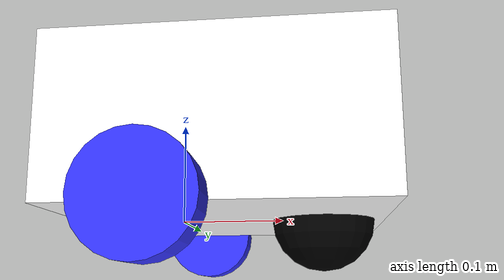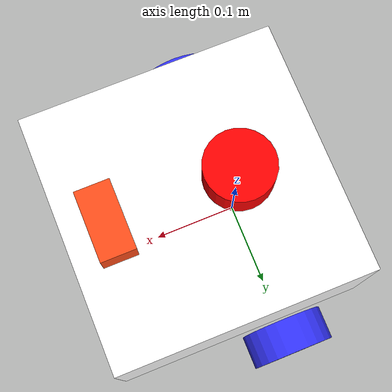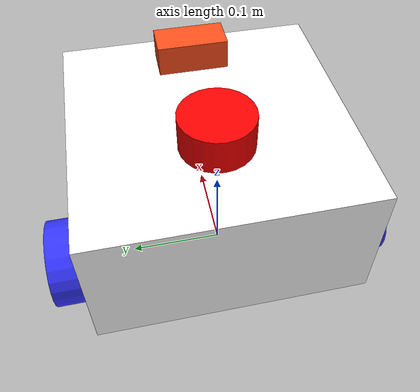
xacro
<?xml version="1.0"?>
<robot xmlns:xacro="http://www.ros.org/wiki/xacro"  name="robot">

    <xacro:arg name="use_ros2_control" default="true"/>
    <xacro:arg name="sim_mode" default="false"/>
    <xacro:arg
        name="controller_params_file"
        default="$(find amr_control)/config/controllers.yaml"
    />

    <xacro:include filename="robot_core.xacro"/>
    <xacro:include filename="lidar.xacro"/>
    <xacro:if value="$(arg use_ros2_control)">
        <xacro:include filename="$(find amr_control)/urdf/ros2_control.xacro"/>
        <xacro:ros2_control
            name="AMRSystem"
            controller_params_file="$(arg controller_params_file)"
        />
    </xacro:if>
    <xacro:unless value="$(arg use_ros2_control)">
        <xacro:include filename="$(find amr_simulation)/urdf/gazebo.xacro"/>
    </xacro:unless>
    <xacro:include filename="camera.xacro"/>

</robot>

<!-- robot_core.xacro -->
<robot xmlns:xacro="http://www.ros.org/wiki/xacro" >

    <xacro:include filename="inertial_macros.xacro"/>

    <material name="white">
        <color rgba="1 1 1 1" />
    </material>

    <material name="orange">
        <color rgba="1 0.3 0.1 1"/>
    </material>

    <material name="blue">
        <color rgba="0.2 0.2 1 1"/>
    </material>

    <material name="black">
        <color rgba="0 0 0 1"/>
    </material>

    <material name="red">
        <color rgba="1 0 0 1"/>
    </material>

    <!-- BASE LINK -->

    <link name="base_link">

    </link>

    <!-- CHASSIS LINK -->

    <joint name="chassis_joint" type="fixed">
        <parent link="base_link"/>
        <child link="chassis"/>
        <origin xyz="-0.1 0 0"/>
    </joint>

    <link name="chassis">
        <visual>
            <origin xyz="0.15 0 0.075"/>
            <geometry>
                <box size="0.3 0.3 0.15"/>
            </geometry>
            <material name="white"/>
        </visual>
        <collision>
            <origin xyz="0.15 0 0.075"/>
            <geometry>
                <box size="0.3 0.3 0.15"/>
            </geometry>
        </collision>
        <xacro:inertial_box mass="0.5" x="0.3" y="0.3" z="0.15">
            <origin xyz="0.15 0 0.075" rpy="0 0 0"/>
        </xacro:inertial_box>
    </link>

    <!-- LEFT WHEEL LINK -->

    <joint name="left_wheel_joint" type="continuous">
        <parent link="base_link"/>
        <child link="left_wheel"/>
        <origin xyz="0 0.175 0" rpy="-${pi/2} 0 0" />
        <axis xyz="0 0 1"/>
    </joint>

    <link name="left_wheel">
        <visual>
            <geometry>
                <cylinder radius="0.05" length="0.04"/>
            </geometry>
            <material name="blue"/>
        </visual>
        <collision>
            <geometry>
                <cylinder radius="0.05" length="0.04"/>
            </geometry>
        </collision>
        <xacro:inertial_cylinder mass="0.1" length="0.04" radius="0.05">
            <origin xyz="0 0 0" rpy="0 0 0"/>
        </xacro:inertial_cylinder>
    </link>

    <!-- RIGHT WHEEL LINK -->

    <joint name="right_wheel_joint" type="continuous">
        <parent link="base_link"/>
        <child link="right_wheel"/>
        <origin xyz="0 -0.175 0" rpy="${pi/2} 0 0" />
        <axis xyz="0 0 -1"/>
    </joint>

    <link name="right_wheel">
        <visual>
            <geometry>
                <cylinder radius="0.05" length="0.04"/>
            </geometry>
            <material name="blue"/>
        </visual>
        <collision>
            <geometry>
                <cylinder radius="0.05" length="0.04"/>
            </geometry>
        </collision>
        <xacro:inertial_cylinder mass="0.1" length="0.04" radius="0.05">
            <origin xyz="0 0 0" rpy="0 0 0"/>
        </xacro:inertial_cylinder>
    </link>

    <!-- CASTER WHEEL LINK -->

    <joint name="caster_wheel_joint" type="fixed">
        <parent link="chassis"/>
        <child link="caster_wheel"/>
        <origin xyz="0.24 0 0"/>
    </joint>

    <link name="caster_wheel">
        <visual>
            <geometry>
                <sphere radius="0.05"/>
            </geometry>
            <material name="black"/>
        </visual>
        <collision>
            <geometry>
                <sphere radius="0.05"/>
            </geometry>
        </collision>
        <xacro:inertial_sphere mass="0.1" radius="0.05">
            <origin xyz="0 0 0" rpy="0 0 0"/>
        </xacro:inertial_sphere>
    </link>

    <!-- GAZEBO MATERIALS -->

    <gazebo reference="chassis">
    <material>Gazebo/White</material>
    </gazebo>

    <gazebo reference="left_wheel">
    <material>Gazebo/Blue</material>
    </gazebo>

    <gazebo reference="right_wheel">
    <material>Gazebo/Blue</material>
    </gazebo>

    <gazebo reference="caster_wheel">
    <material>Gazebo/Black</material>
    </gazebo>

</robot>

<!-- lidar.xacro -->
<robot xmlns:xacro="http://www.ros.org/wiki/xacro">

  <joint name="lidar_joint" type="fixed">
    <parent link="chassis"/>
    <child link="lidar_link"/>
    <origin xyz="0.1 0 0.175" rpy="0 0 0"/>
  </joint>

  <link name="lidar_link">

    <visual>
      <geometry>
        <cylinder radius="0.04" length="0.04"/>
      </geometry>

      <material name="red"/>
    </visual>

    <collision>
      <geometry>
        <cylinder radius="0.04" length="0.04"/>
      </geometry>
    </collision>

    <xacro:inertial_cylinder
      mass="0.15"
      length="0.04"
      radius="0.04">

      <origin xyz="0 0 0" rpy="0 0 0"/>

    </xacro:inertial_cylinder>

  </link>

  <gazebo reference="lidar_link">

    <sensor name="lidar_sensor" type="gpu_lidar">

      <topic>/scan</topic>

      <update_rate>10</update_rate>

      <lidar>

        <scan>
          <horizontal>
            <samples>360</samples>
            <resolution>1</resolution>
            <min_angle>-${pi}</min_angle>
            <max_angle>${pi}</max_angle>
          </horizontal>
        </scan>

        <range>
          <min>0.3</min>
          <max>12.0</max>
          <resolution>0.01</resolution>
        </range>

        <noise>
          <type>gaussian</type>
          <mean>0.0</mean>
          <stddev>0.01</stddev>
        </noise>

      </lidar>

      <always_on>true</always_on>
      <visualize>true</visualize>

    </sensor>

  </gazebo>

</robot>

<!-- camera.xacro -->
<robot xmlns:xacro="http://www.ros.org/wiki/xacro">

  <joint name="camera_joint" type="fixed">
    <parent link="chassis"/>
    <child link="camera_link"/>
    <origin xyz="0.25 0 0.165" rpy="0 0 0"/>
  </joint>

  <link name="camera_link">
    <visual>
      <geometry>
        <box size="0.04 0.08 0.04"/>
      </geometry>
      <material name="orange"/>
    </visual>

    <collision>
      <geometry>
        <box size="0.04 0.08 0.04"/>
      </geometry>
    </collision>

    <xacro:inertial_box
      mass="0.05"
      x="0.04"
      y="0.08"
      z="0.04">
      <origin xyz="0 0 0" rpy="0 0 0"/>
    </xacro:inertial_box>
  </link>

  <joint name="camera_optical_joint" type="fixed">
    <parent link="camera_link"/>
    <child link="camera_optical_frame"/>
    <origin
      xyz="0 0 0" rpy="${-pi/2} 0 ${-pi/2}"/>
  </joint>

  <link name="camera_optical_frame"/>

  <gazebo reference="camera_link">
    <sensor name="rgb_camera" type="camera">

      <always_on>true</always_on>
      <update_rate>10</update_rate>
      <visualize>true</visualize>

      <topic>/camera/image</topic>
      <gz_frame_id>camera_optical_frame</gz_frame_id>

      <camera>
        <horizontal_fov>1.089</horizontal_fov>

        <image>
          <width>640</width>
          <height>480</height>
          <format>R8G8B8</format>
        </image>

        <clip>
          <near>0.05</near>
          <far>20.0</far>
        </clip>

        <camera_info_topic>/camera/camera_info</camera_info_topic>
      </camera>

    </sensor>
  </gazebo>

</robot>
